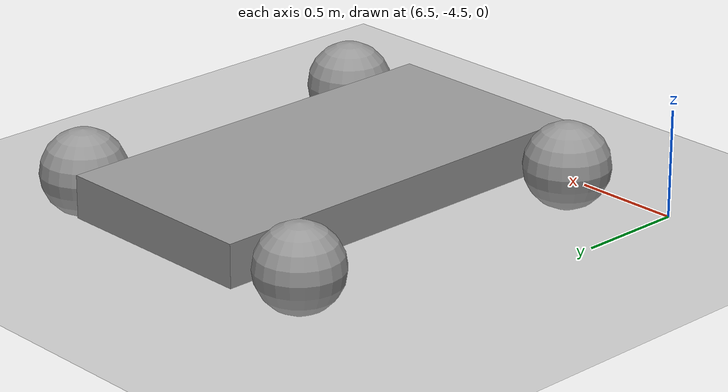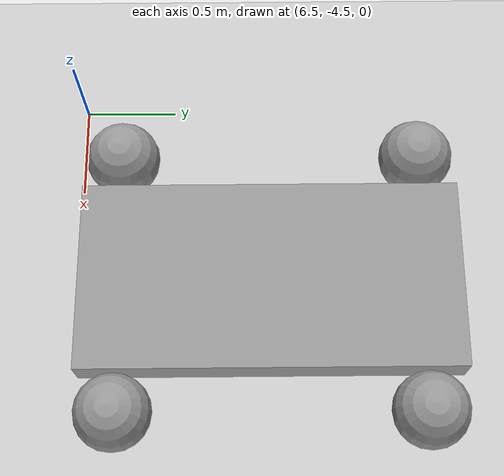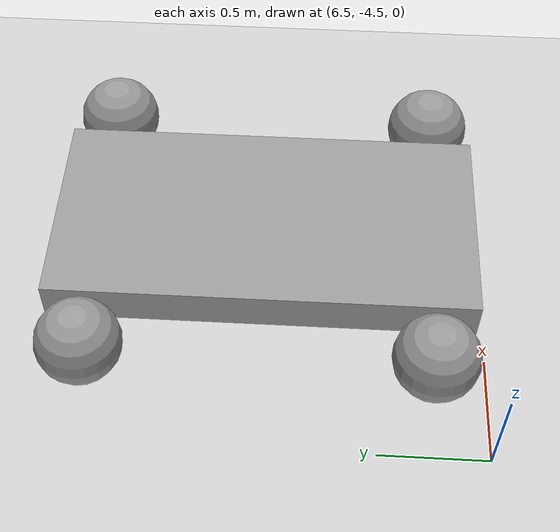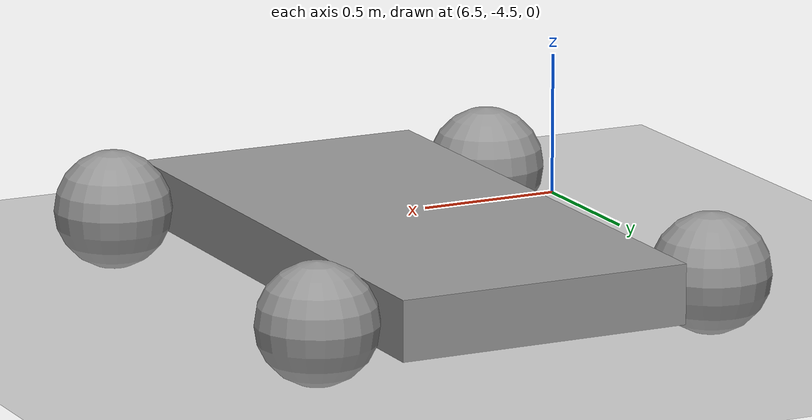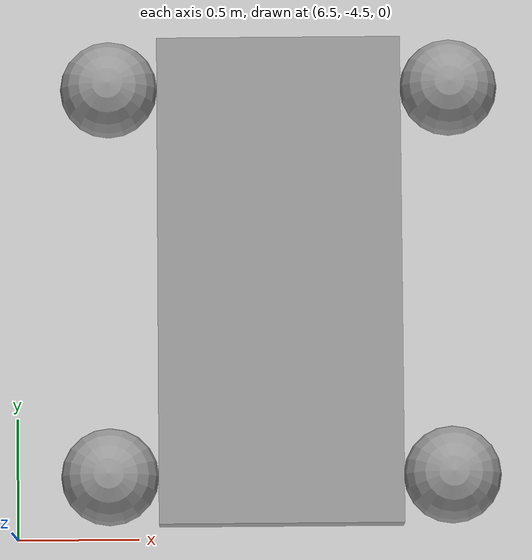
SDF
<sdf version="1.6">
 <world name="default">
  <model name="ground_plane">
   <static>1</static>
   <link name="link">
    <collision name="collision">
     <geometry><plane><normal>0 0 1</normal><size>100 100</size></plane></geometry>
     <surface>
      <contact><collide_bitmask>65535</collide_bitmask></contact>
      <friction><ode><mu>100</mu><mu2>50</mu2></ode></friction>
     </surface>
    </collision>
    <visual name="visual">
     <cast_shadows>0</cast_shadows>
     <geometry><plane><normal>0 0 1</normal><size>100 100</size></plane></geometry>
     <material>
      <script><uri>file://media/materials/scripts/gazebo.material</uri><name>Gazebo/Grey</name></script>
     </material>
    </visual>
   </link>
  </model>
  <model name="object_0">
   <link name="link_0">
    <pose>-2.35749 -2.62116 0.5 0 -0 0</pose>
    <inertial>
     <mass>1</mass>
     <inertia>
      <ixx>0.166667</ixx>
      <ixy>0</ixy>
      <ixz>0</ixz>
      <iyy>0.166667</iyy>
      <iyz>0</iyz>
      <izz>0.166667</izz>
     </inertia>
    </inertial>
    <visual name="visual">
     <geometry><box><size>2 1 0.2</size></box></geometry>
     <material>
      <lighting>1</lighting>
      <script><uri>file://media/materials/scripts/gazebo.material</uri><name>Gazebo/Grey</name></script>
      <shader type="pixel"><normal_map>__default__</normal_map></shader>
      <ambient>0.3 0.3 0.3 1</ambient>
      <diffuse>0.7 0.7 0.7 1</diffuse>
      <specular>0.01 0.01 0.01 1</specular>
      <emissive>0 0 0 1</emissive>
     </material>
    </visual>
    <collision name="collision">
     <geometry><box><size>2 1 0.2</size></box></geometry>
     <surface>
      <friction>
       <ode><mu>1</mu><mu2>1</mu2><fdir1>0 0 0</fdir1><slip1>0</slip1><slip2>0</slip2></ode>
       <torsional>
        <coefficient>1</coefficient>
        <patch_radius>0</patch_radius>
        <surface_radius>0</surface_radius>
        <use_patch_radius>1</use_patch_radius>
        <ode><slip>0</slip></ode>
       </torsional>
      </friction>
      <bounce><restitution_coefficient>0</restitution_coefficient><threshold>1e+06</threshold></bounce>
      <contact>
       <collide_without_contact>0</collide_without_contact>
       <collide_without_contact_bitmask>1</collide_without_contact_bitmask>
       <collide_bitmask>1</collide_bitmask>
       <ode>
        <soft_cfm>0</soft_cfm>
        <soft_erp>0.2</soft_erp>
        <kp>1e+13</kp>
        <kd>1</kd>
        <max_vel>0.01</max_vel>
        <min_depth>0</min_depth>
       </ode>
       <bullet>
        <split_impulse>1</split_impulse>
        <split_impulse_penetration_threshold>-0.01</split_impulse_penetration_threshold>
        <soft_cfm>0</soft_cfm>
        <soft_erp>0.2</soft_erp>
        <kp>1e+13</kp>
        <kd>1</kd>
       </bullet>
      </contact>
     </surface>
    </collision>
   </link>
   <link name="link_3">
    <pose>-3.15749 -3.32116 0.5 0 -0 0</pose>
    <inertial>
     <mass>1</mass>
     <inertia><ixx>0.1</ixx><ixy>0</ixy><ixz>0</ixz><iyy>0.1</iyy><iyz>0</iyz><izz>0.1</izz></inertia>
    </inertial>
    <visual name="visual">
     <geometry><sphere><radius>0.2</radius></sphere></geometry>
     <material>
      <lighting>1</lighting>
      <script><uri>file://media/materials/scripts/gazebo.material</uri><name>Gazebo/Grey</name></script>
      <shader type="pixel"><normal_map>__default__</normal_map></shader>
      <ambient>0.3 0.3 0.3 1</ambient>
      <diffuse>0.7 0.7 0.7 1</diffuse>
      <specular>0.01 0.01 0.01 1</specular>
      <emissive>0 0 0 1</emissive>
     </material>
    </visual>
    <collision name="collision">
     <geometry><sphere><radius>0.2</radius></sphere></geometry>
     <surface>
      <friction>
       <ode><mu>1</mu><mu2>1</mu2><fdir1>0 0 0</fdir1><slip1>0</slip1><slip2>0</slip2></ode>
       <torsional>
        <coefficient>1</coefficient>
        <patch_radius>0</patch_radius>
        <surface_radius>0</surface_radius>
        <use_patch_radius>1</use_patch_radius>
        <ode><slip>0</slip></ode>
       </torsional>
      </friction>
      <bounce><restitution_coefficient>0</restitution_coefficient><threshold>1e+06</threshold></bounce>
      <contact>
       <collide_without_contact>0</collide_without_contact>
       <collide_without_contact_bitmask>1</collide_without_contact_bitmask>
       <collide_bitmask>1</collide_bitmask>
       <ode>
        <soft_cfm>0</soft_cfm>
        <soft_erp>0.2</soft_erp>
        <kp>1e+13</kp>
        <kd>1</kd>
        <max_vel>0.01</max_vel>
        <min_depth>0</min_depth>
       </ode>
       <bullet>
        <split_impulse>1</split_impulse>
        <split_impulse_penetration_threshold>-0.01</split_impulse_penetration_threshold>
        <soft_cfm>0</soft_cfm>
        <soft_erp>0.2</soft_erp>
        <kp>1e+13</kp>
        <kd>1</kd>
       </bullet>
      </contact>
     </surface>
    </collision>
   </link>
   <link name="link_3_clone">
    <pose>-3.15749 -1.92116 0.5 0 -0 0</pose>
    <inertial>
     <mass>1</mass>
     <inertia><ixx>0.1</ixx><ixy>0</ixy><ixz>0</ixz><iyy>0.1</iyy><iyz>0</iyz><izz>0.1</izz></inertia>
    </inertial>
    <visual name="visual">
     <geometry><sphere><radius>0.2</radius></sphere></geometry>
     <material>
      <lighting>1</lighting>
      <script><uri>file://media/materials/scripts/gazebo.material</uri><name>Gazebo/Grey</name></script>
      <shader type="pixel"><normal_map>__default__</normal_map></shader>
      <ambient>0.3 0.3 0.3 1</ambient>
      <diffuse>0.7 0.7 0.7 1</diffuse>
      <specular>0.01 0.01 0.01 1</specular>
      <emissive>0 0 0 1</emissive>
     </material>
    </visual>
    <collision name="collision">
     <geometry><sphere><radius>0.2</radius></sphere></geometry>
     <surface>
      <friction>
       <ode><mu>1</mu><mu2>1</mu2><fdir1>0 0 0</fdir1><slip1>0</slip1><slip2>0</slip2></ode>
       <torsional>
        <coefficient>1</coefficient>
        <patch_radius>0</patch_radius>
        <surface_radius>0</surface_radius>
        <use_patch_radius>1</use_patch_radius>
        <ode><slip>0</slip></ode>
       </torsional>
      </friction>
      <bounce><restitution_coefficient>0</restitution_coefficient><threshold>1e+06</threshold></bounce>
      <contact>
       <collide_without_contact>0</collide_without_contact>
       <collide_without_contact_bitmask>1</collide_without_contact_bitmask>
       <collide_bitmask>1</collide_bitmask>
       <ode>
        <soft_cfm>0</soft_cfm>
        <soft_erp>0.2</soft_erp>
        <kp>1e+13</kp>
        <kd>1</kd>
        <max_vel>0.01</max_vel>
        <min_depth>0</min_depth>
       </ode>
       <bullet>
        <split_impulse>1</split_impulse>
        <split_impulse_penetration_threshold>-0.01</split_impulse_penetration_threshold>
        <soft_cfm>0</soft_cfm>
        <soft_erp>0.2</soft_erp>
        <kp>1e+13</kp>
        <kd>1</kd>
       </bullet>
      </contact>
     </surface>
    </collision>
   </link>
   <link name="link_3_clone_0">
    <pose>-1.55749 -3.32116 0.5 0 -0 0</pose>
    <inertial>
     <mass>1</mass>
     <inertia><ixx>0.1</ixx><ixy>0</ixy><ixz>0</ixz><iyy>0.1</iyy><iyz>0</iyz><izz>0.1</izz></inertia>
    </inertial>
    <visual name="visual">
     <geometry><sphere><radius>0.2</radius></sphere></geometry>
     <material>
      <lighting>1</lighting>
      <script><uri>file://media/materials/scripts/gazebo.material</uri><name>Gazebo/Grey</name></script>
      <shader type="pixel"><normal_map>__default__</normal_map></shader>
      <ambient>0.3 0.3 0.3 1</ambient>
      <diffuse>0.7 0.7 0.7 1</diffuse>
      <specular>0.01 0.01 0.01 1</specular>
      <emissive>0 0 0 1</emissive>
     </material>
    </visual>
    <collision name="collision">
     <geometry><sphere><radius>0.2</radius></sphere></geometry>
     <surface>
      <friction>
       <ode><mu>1</mu><mu2>1</mu2><fdir1>0 0 0</fdir1><slip1>0</slip1><slip2>0</slip2></ode>
       <torsional>
        <coefficient>1</coefficient>
        <patch_radius>0</patch_radius>
        <surface_radius>0</surface_radius>
        <use_patch_radius>1</use_patch_radius>
        <ode><slip>0</slip></ode>
       </torsional>
      </friction>
      <bounce><restitution_coefficient>0</restitution_coefficient><threshold>1e+06</threshold></bounce>
      <contact>
       <collide_without_contact>0</collide_without_contact>
       <collide_without_contact_bitmask>1</collide_without_contact_bitmask>
       <collide_bitmask>1</collide_bitmask>
       <ode>
        <soft_cfm>0</soft_cfm>
        <soft_erp>0.2</soft_erp>
        <kp>1e+13</kp>
        <kd>1</kd>
        <max_vel>0.01</max_vel>
        <min_depth>0</min_depth>
       </ode>
       <bullet>
        <split_impulse>1</split_impulse>
        <split_impulse_penetration_threshold>-0.01</split_impulse_penetration_threshold>
        <soft_cfm>0</soft_cfm>
        <soft_erp>0.2</soft_erp>
        <kp>1e+13</kp>
        <kd>1</kd>
       </bullet>
      </contact>
     </surface>
    </collision>
   </link>
   <link name="link_3_clone_1">
    <pose>-1.55749 -1.92116 0.5 0 -0 0</pose>
    <inertial>
     <mass>1</mass>
     <inertia><ixx>0.1</ixx><ixy>0</ixy><ixz>0</ixz><iyy>0.1</iyy><iyz>0</iyz><izz>0.1</izz></inertia>
    </inertial>
    <visual name="visual">
     <geometry><sphere><radius>0.2</radius></sphere></geometry>
     <material>
      <lighting>1</lighting>
      <script><uri>file://media/materials/scripts/gazebo.material</uri><name>Gazebo/Grey</name></script>
      <shader type="pixel"><normal_map>__default__</normal_map></shader>
      <ambient>0.3 0.3 0.3 1</ambient>
      <diffuse>0.7 0.7 0.7 1</diffuse>
      <specular>0.01 0.01 0.01 1</specular>
      <emissive>0 0 0 1</emissive>
     </material>
    </visual>
    <collision name="collision">
     <geometry><sphere><radius>0.2</radius></sphere></geometry>
     <surface>
      <friction>
       <ode><mu>1</mu><mu2>1</mu2><fdir1>0 0 0</fdir1><slip1>0</slip1><slip2>0</slip2></ode>
       <torsional>
        <coefficient>1</coefficient>
        <patch_radius>0</patch_radius>
        <surface_radius>0</surface_radius>
        <use_patch_radius>1</use_patch_radius>
        <ode><slip>0</slip></ode>
       </torsional>
      </friction>
      <bounce><restitution_coefficient>0</restitution_coefficient><threshold>1e+06</threshold></bounce>
      <contact>
       <collide_without_contact>0</collide_without_contact>
       <collide_without_contact_bitmask>1</collide_without_contact_bitmask>
       <collide_bitmask>1</collide_bitmask>
       <ode>
        <soft_cfm>0</soft_cfm>
        <soft_erp>0.2</soft_erp>
        <kp>1e+13</kp>
        <kd>1</kd>
        <max_vel>0.01</max_vel>
        <min_depth>0</min_depth>
       </ode>
       <bullet>
        <split_impulse>1</split_impulse>
        <split_impulse_penetration_threshold>-0.01</split_impulse_penetration_threshold>
        <soft_cfm>0</soft_cfm>
        <soft_erp>0.2</soft_erp>
        <kp>1e+13</kp>
        <kd>1</kd>
       </bullet>
      </contact>
     </surface>
    </collision>
   </link>
   <joint name="link_0_JOINT_0" type="revolute">
    <parent>link_0</parent>
    <child>link_3</child>
    <axis>
     <xyz>0 0 1</xyz>
     <limit>
      <lower>-1.79769e+308</lower>
      <upper>1.79769e+308</upper>
      <effort>-1</effort>
      <velocity>-1</velocity>
     </limit>
     <dynamics>
      <spring_reference>0</spring_reference>
      <spring_stiffness>0</spring_stiffness>
      <damping>0</damping>
     </dynamics>
     <use_parent_model_frame>0</use_parent_model_frame>
    </axis>
    <physics>
     <ode><limit><cfm>0</cfm><erp>0.2</erp></limit><suspension><cfm>0</cfm><erp>0.2</erp></suspension></ode>
    </physics>
   </joint>
   <joint name="link_0_JOINT_1" type="revolute">
    <parent>link_0</parent>
    <child>link_3_clone</child>
    <axis>
     <xyz>0 0 1</xyz>
     <limit>
      <lower>-1.79769e+308</lower>
      <upper>1.79769e+308</upper>
      <effort>-1</effort>
      <velocity>-1</velocity>
     </limit>
     <dynamics>
      <spring_reference>0</spring_reference>
      <spring_stiffness>0</spring_stiffness>
      <damping>0</damping>
     </dynamics>
     <use_parent_model_frame>0</use_parent_model_frame>
    </axis>
    <physics>
     <ode><limit><cfm>0</cfm><erp>0.2</erp></limit><suspension><cfm>0</cfm><erp>0.2</erp></suspension></ode>
    </physics>
   </joint>
   <joint name="link_0_JOINT_2" type="revolute">
    <parent>link_0</parent>
    <child>link_3_clone_0</child>
    <axis>
     <xyz>0 0 1</xyz>
     <limit>
      <lower>-1.79769e+308</lower>
      <upper>1.79769e+308</upper>
      <effort>-1</effort>
      <velocity>-1</velocity>
     </limit>
     <dynamics>
      <spring_reference>0</spring_reference>
      <spring_stiffness>0</spring_stiffness>
      <damping>0</damping>
     </dynamics>
     <use_parent_model_frame>0</use_parent_model_frame>
    </axis>
    <physics>
     <ode><limit><cfm>0</cfm><erp>0.2</erp></limit><suspension><cfm>0</cfm><erp>0.2</erp></suspension></ode>
    </physics>
   </joint>
   <joint name="link_0_JOINT_3" type="revolute">
    <parent>link_0</parent>
    <child>link_3_clone_1</child>
    <axis>
     <xyz>0 0 1</xyz>
     <limit>
      <lower>-1.79769e+308</lower>
      <upper>1.79769e+308</upper>
      <effort>-1</effort>
      <velocity>-1</velocity>
     </limit>
     <dynamics>
      <spring_reference>0</spring_reference>
      <spring_stiffness>0</spring_stiffness>
      <damping>0</damping>
     </dynamics>
     <use_parent_model_frame>0</use_parent_model_frame>
    </axis>
    <physics>
     <ode><limit><cfm>0</cfm><erp>0.2</erp></limit><suspension><cfm>0</cfm><erp>0.2</erp></suspension></ode>
    </physics>
   </joint>
   <static>0</static>
   <pose>10.2082 -5.81321 -0.3 0 0 -1.57076</pose>
  </model>
 </world>
</sdf>
